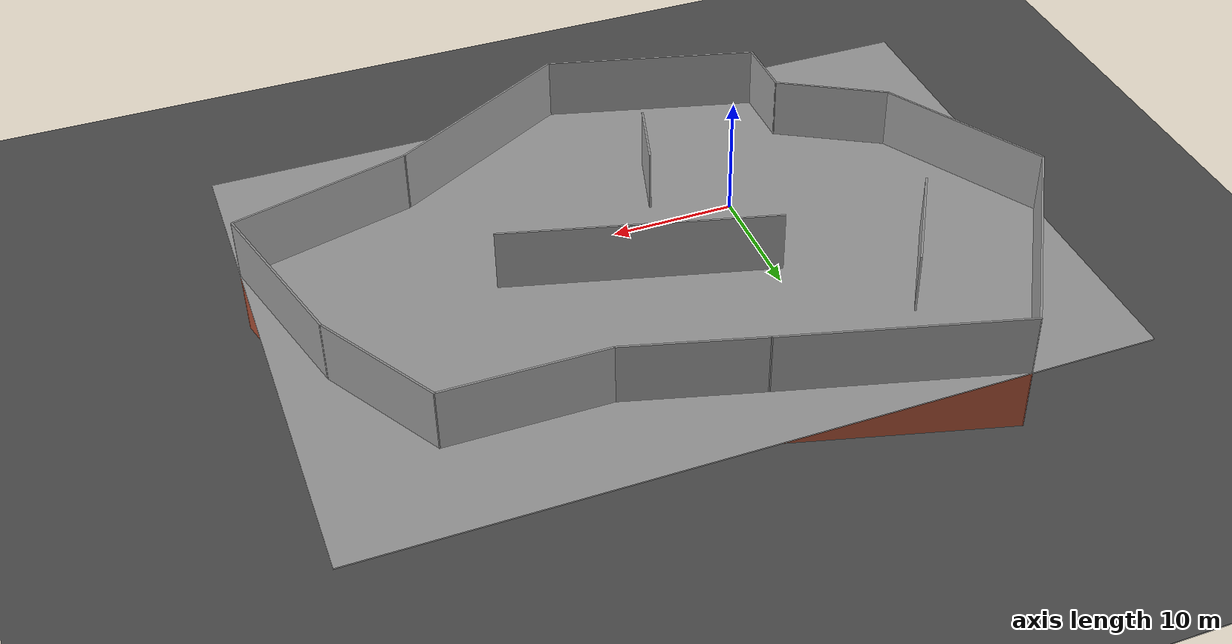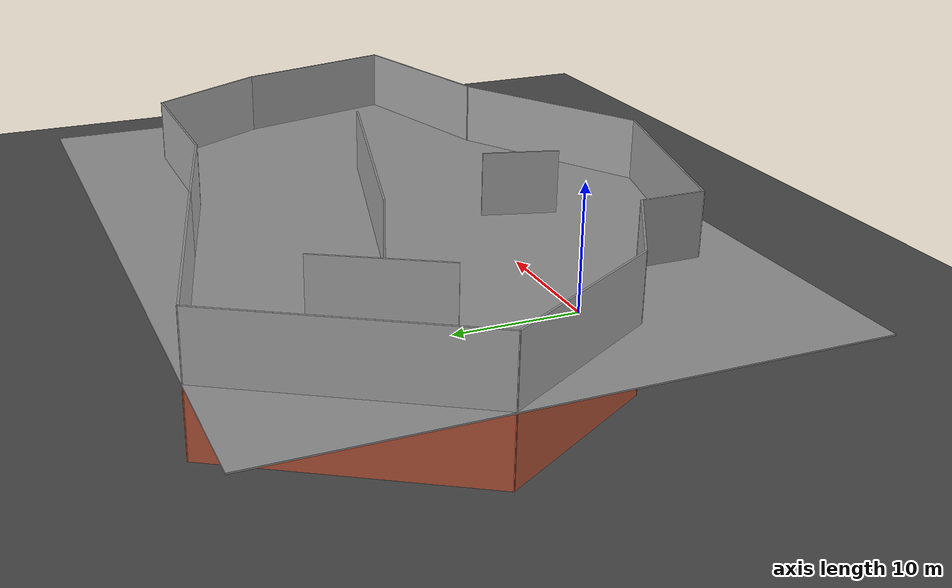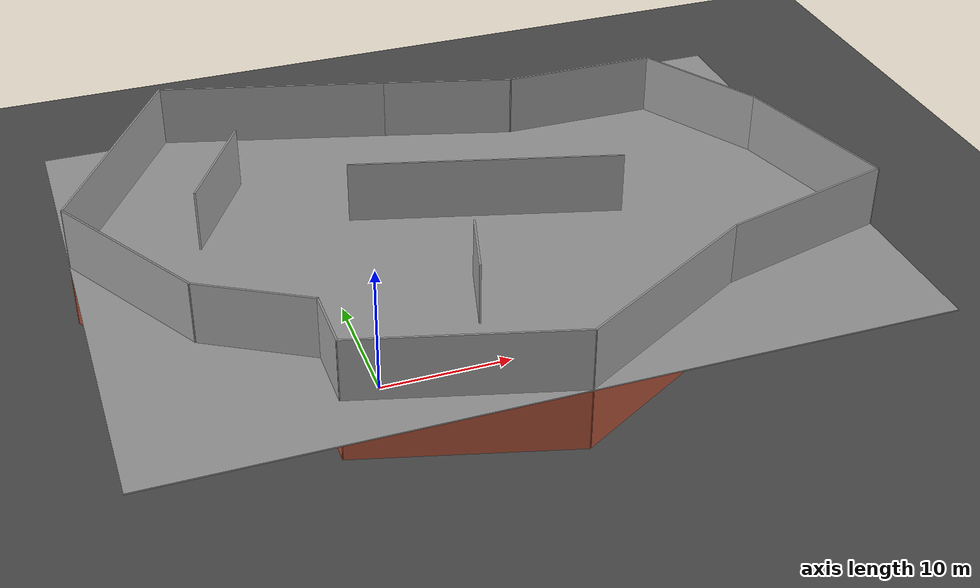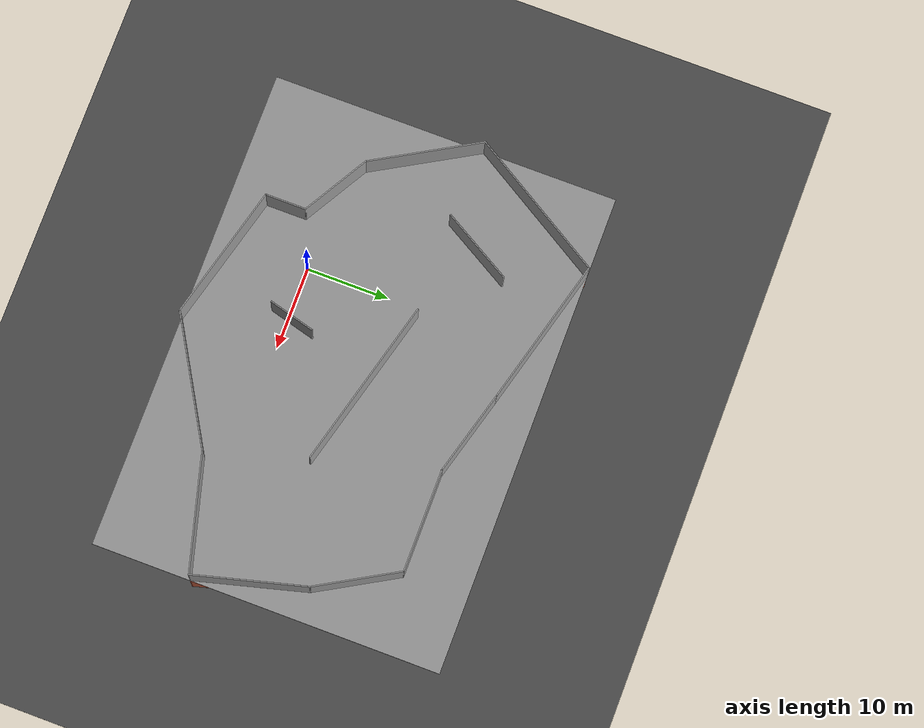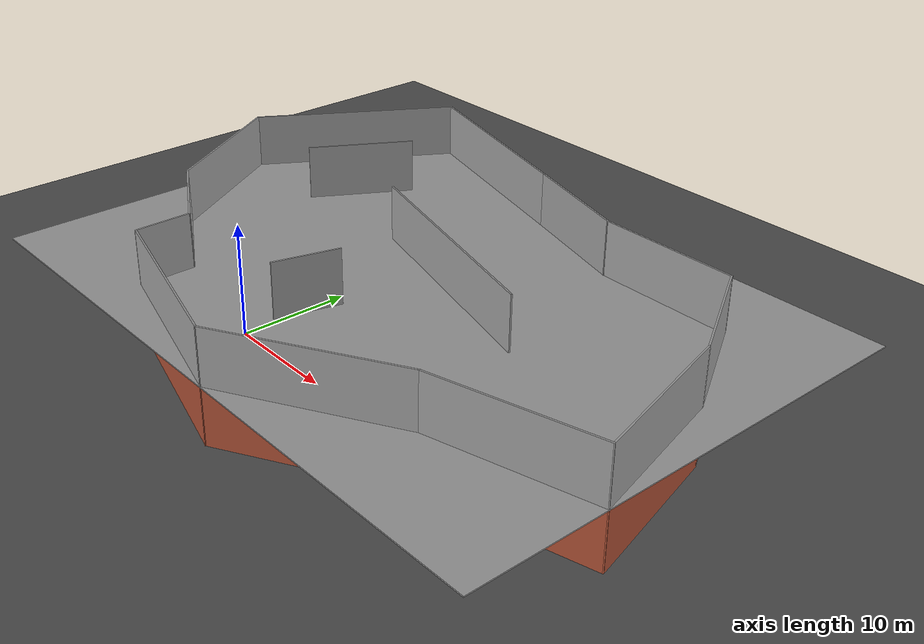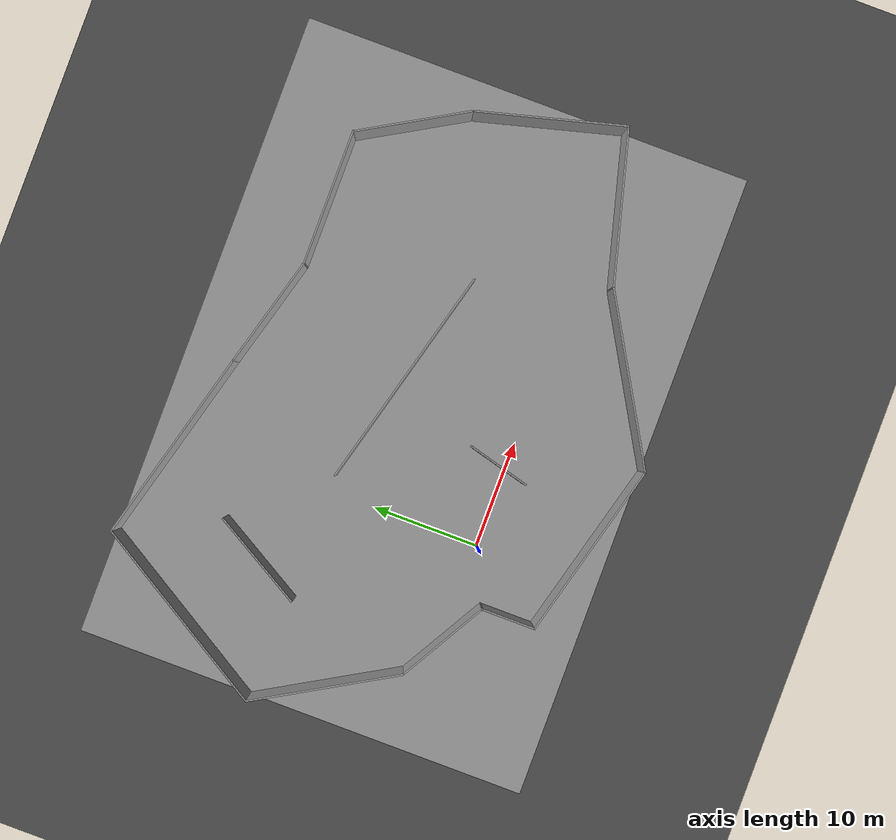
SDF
<sdf version="1.6">
 <world name="default">
  <light name="sun" type="directional">
   <pose>0 0 10 0 -0 0</pose>
   <diffuse>0.8 0.8 0.8 1</diffuse>
   <specular>0.2 0.2 0.2 1</specular>
   <attenuation>
    <range>1000</range>
    <constant>0.9</constant>
    <linear>0.01</linear>
    <quadratic>0.001</quadratic>
   </attenuation>
   <direction>-0.5 0.1 -0.9</direction>
  </light>
  <model name="ground_plane">
   <static>1</static>
   <link name="link">
    <collision name="collision">
     <geometry><plane><normal>0 0 1</normal><size>100 100</size></plane></geometry>
     <surface>
      <contact><collide_bitmask>65535</collide_bitmask></contact>
      <friction><ode><mu>100</mu><mu2>50</mu2></ode></friction>
     </surface>
    </collision>
    <visual name="visual">
     <cast_shadows>0</cast_shadows>
     <geometry><plane><normal>0 0 1</normal><size>100 100</size></plane></geometry>
     <material>
      <script><uri>file://media/materials/scripts/gazebo.material</uri><name>Gazebo/Grey</name></script>
     </material>
    </visual>
   </link>
  </model>
  <model name="asphalt_plane">
   <static>1</static>
   <link name="link">
    <collision name="collision"><geometry><box><size>200 200 0.1</size></box></geometry></collision>
    <visual name="visual">
     <cast_shadows>0</cast_shadows>
     <geometry><box><size>200 200 0.1</size></box></geometry>
     <material>
      <script>
       <uri>model://asphalt_plane/materials/scripts</uri>
       <uri>model://asphalt_plane/materials/textures</uri>
       <name>vrc/asphalt</name>
      </script>
     </material>
    </visual>
   </link>
  </model>
  <physics name="default_physics" default="0" type="ode">
   <ode>
    <solver>
     <type>quick</type>
     <iters>10</iters>
     <sor>1.3</sor>
     <use_dynamic_moi_rescaling>0</use_dynamic_moi_rescaling>
    </solver>
    <constraints>
     <cfm>0</cfm>
     <erp>0.2</erp>
     <contact_max_correcting_vel>100</contact_max_correcting_vel>
     <contact_surface_layer>0.001</contact_surface_layer>
    </constraints>
   </ode>
   <max_step_size>0.004</max_step_size>
   <real_time_factor>1</real_time_factor>
   <real_time_update_rate>250</real_time_update_rate>
  </physics>
  <gravity>0 0 -9.8066</gravity>
  <magnetic_field>6e-06 2.3e-05 -4.2e-05</magnetic_field>
  <atmosphere type="adiabatic"/>
  <scene><ambient>0.4 0.4 0.4 1</ambient><background>0.7 0.7 0.7 1</background><shadows>1</shadows></scene>
  <spherical_coordinates>
   <surface_model>EARTH_WGS84</surface_model>
   <latitude_deg>0</latitude_deg>
   <longitude_deg>0</longitude_deg>
   <elevation>0</elevation>
   <heading_deg>0</heading_deg>
  </spherical_coordinates>
  <model name="indoor1">
   <pose>10.1354 9.92724 0 0 -0 0</pose>
   <link name="Floor_0">
    <collision name="Floor_0_Collision">
     <geometry><box><size>58.5728 41.9035 0.1</size></box></geometry>
     <pose>0 0 0.05 0 -0 0</pose>
    </collision>
    <visual name="Floor_0_Visual">
     <pose>0 0 0.05 0 -0 0</pose>
     <geometry><box><size>58.5728 41.9035 0.1</size></box></geometry>
     <material>
      <script><uri>file://media/materials/scripts/gazebo.material</uri><name>Gazebo/Grey</name></script>
      <ambient>1 1 1 1</ambient>
     </material>
     <meta><layer>1</layer></meta>
    </visual>
    <pose>-1e-06 1e-06 5 0 -0 0</pose>
   </link>
   <link name="Wall_0">
    <collision name="Wall_0_Collision">
     <geometry><box><size>5 0.15 5</size></box></geometry>
     <pose>0 0 2.5 0 -0 0</pose>
    </collision>
    <visual name="Wall_0_Visual">
     <pose>0 0 2.5 0 -0 0</pose>
     <geometry><box><size>5 0.15 5</size></box></geometry>
     <material>
      <script><uri>file://media/materials/scripts/gazebo.material</uri><name>Gazebo/Bricks</name></script>
      <ambient>1 1 1 1</ambient>
     </material>
     <meta><layer>0</layer></meta>
    </visual>
    <pose>-14.5724 -14.1282 0 0 -0 -1.5708</pose>
   </link>
   <link name="Wall_1">
    <collision name="Wall_1_Collision">
     <geometry><box><size>16.75 0.15 5</size></box></geometry>
     <pose>0 0 2.5 0 -0 0</pose>
    </collision>
    <visual name="Wall_1_Visual">
     <pose>0 0 2.5 0 -0 0</pose>
     <geometry><box><size>16.75 0.15 5</size></box></geometry>
     <material>
      <script><uri>file://media/materials/scripts/gazebo.material</uri><name>Gazebo/Bricks</name></script>
      <ambient>1 1 1 1</ambient>
     </material>
     <meta><layer>0</layer></meta>
    </visual>
    <pose>-6.55494 -18.7012 0 0 -0 -0.261766</pose>
   </link>
   <link name="Wall_10">
    <collision name="Wall_10_Collision">
     <geometry><box><size>14 0.15 5</size></box></geometry>
     <pose>0 0 2.5 0 -0 0</pose>
    </collision>
    <visual name="Wall_10_Visual">
     <pose>0 0 2.5 0 -0 0</pose>
     <geometry><box><size>14 0.15 5</size></box></geometry>
     <material>
      <script><uri>file://media/materials/scripts/gazebo.material</uri><name>Gazebo/Bricks</name></script>
      <ambient>1 1 1 1</ambient>
     </material>
     <meta><layer>0</layer></meta>
    </visual>
    <pose>-25.7209 -1.25624 0 0 -0 -1.04718</pose>
   </link>
   <link name="Wall_11">
    <collision name="Wall_11_Collision">
     <geometry><box><size>9.03144 0.15 5</size></box></geometry>
     <pose>0 0 2.5 0 -0 0</pose>
    </collision>
    <visual name="Wall_11_Visual">
     <pose>0 0 2.5 0 -0 0</pose>
     <geometry><box><size>9.03144 0.15 5</size></box></geometry>
     <material>
      <script><uri>file://media/materials/scripts/gazebo.material</uri><name>Gazebo/Bricks</name></script>
      <ambient>1 1 1 1</ambient>
     </material>
     <meta><layer>0</layer></meta>
    </visual>
    <pose>-18.4154 -9.47824 0 0 -0 -0.524816</pose>
   </link>
   <link name="Wall_13">
    <collision name="Wall_13_Collision">
     <geometry><box><size>21 0.15 5</size></box></geometry>
     <pose>0 0 2.5 0 -0 0</pose>
    </collision>
    <visual name="Wall_13_Visual">
     <pose>0 0 2.5 0 -0 0</pose>
     <geometry><box><size>21 0.15 5</size></box></geometry>
     <material>
      <script><uri>file://media/materials/scripts/gazebo.material</uri><name>Gazebo/Bricks</name></script>
      <ambient>1 1 1 1</ambient>
     </material>
     <meta><layer>0</layer></meta>
    </visual>
    <pose>1.94606 1.63376 0 0 -0 -0.261789</pose>
   </link>
   <link name="Wall_15">
    <collision name="Wall_15_Collision">
     <geometry><box><size>9.5 0.15 5</size></box></geometry>
     <pose>0 0 2.5 0 -0 0</pose>
    </collision>
    <visual name="Wall_15_Visual">
     <pose>0 0 2.5 0 -0 0</pose>
     <geometry><box><size>9.5 0.15 5</size></box></geometry>
     <material>
      <script><uri>file://media/materials/scripts/gazebo.material</uri><name>Gazebo/Bricks</name></script>
      <ambient>1 1 1 1</ambient>
     </material>
     <meta><layer>0</layer></meta>
    </visual>
    <pose>-17.3919 8.07926 0 0 -0 -2.09441</pose>
   </link>
   <link name="Wall_18">
    <collision name="Wall_18_Collision">
     <geometry><box><size>5.75 0.15 5</size></box></geometry>
     <pose>0 0 2.5 0 -0 0</pose>
    </collision>
    <visual name="Wall_18_Visual">
     <pose>0 0 2.5 0 -0 0</pose>
     <geometry><box><size>5.75 0.15 5</size></box></geometry>
     <material>
      <script><uri>file://media/materials/scripts/gazebo.material</uri><name>Gazebo/Bricks</name></script>
      <ambient>1 1 1 1</ambient>
     </material>
     <meta><layer>0</layer></meta>
    </visual>
    <pose>-2.41344 -8.76824 0 0 -0 -1.83266</pose>
   </link>
   <link name="Wall_2">
    <collision name="Wall_2_Collision">
     <geometry><box><size>16.4589 0.15 5</size></box></geometry>
     <pose>0 0 2.5 0 -0 0</pose>
    </collision>
    <visual name="Wall_2_Visual">
     <pose>0 0 2.5 0 -0 0</pose>
     <geometry><box><size>16.4589 0.15 5</size></box></geometry>
     <material>
      <script><uri>file://media/materials/scripts/gazebo.material</uri><name>Gazebo/Bricks</name></script>
      <ambient>1 1 1 1</ambient>
     </material>
     <meta><layer>0</layer></meta>
    </visual>
    <pose>8.51856 -16.7617 0 0 -0 0.525056</pose>
   </link>
   <link name="Wall_20">
    <collision name="Wall_20_Collision">
     <geometry><box><size>5 0.15 5</size></box></geometry>
     <pose>0 0 2.5 0 -0 0</pose>
    </collision>
    <visual name="Wall_20_Visual">
     <pose>0 0 2.5 0 -0 0</pose>
     <geometry><box><size>5 0.15 5</size></box></geometry>
     <material>
      <script><uri>file://media/materials/scripts/gazebo.material</uri><name>Gazebo/Grey</name></script>
      <ambient>1 1 1 1</ambient>
     </material>
     <meta><layer>1</layer></meta>
    </visual>
    <pose>-14.5724 -14.1282 5 0 -0 -1.5708</pose>
   </link>
   <link name="Wall_21">
    <collision name="Wall_21_Collision">
     <geometry><box><size>16.7505 0.15 5</size></box></geometry>
     <pose>0 0 2.5 0 -0 0</pose>
    </collision>
    <visual name="Wall_21_Visual">
     <pose>0 0 2.5 0 -0 0</pose>
     <geometry><box><size>16.7505 0.15 5</size></box></geometry>
     <material>
      <script><uri>file://media/materials/scripts/gazebo.material</uri><name>Gazebo/Grey</name></script>
      <ambient>1 1 1 1</ambient>
     </material>
     <meta><layer>1</layer></meta>
    </visual>
    <pose>-6.55494 -18.7012 5 0 -0 -0.261766</pose>
   </link>
   <link name="Wall_22">
    <collision name="Wall_22_Collision">
     <geometry><box><size>16.4589 0.15 5</size></box></geometry>
     <pose>0 0 2.5 0 -0 0</pose>
    </collision>
    <visual name="Wall_22_Visual">
     <pose>0 0 2.5 0 -0 0</pose>
     <geometry><box><size>16.4589 0.15 5</size></box></geometry>
     <material>
      <script><uri>file://media/materials/scripts/gazebo.material</uri><name>Gazebo/Grey</name></script>
      <ambient>1 1 1 1</ambient>
     </material>
     <meta><layer>1</layer></meta>
    </visual>
    <pose>8.51856 -16.7617 5 0 -0 0.525056</pose>
   </link>
   <link name="Wall_23">
    <collision name="Wall_23_Collision">
     <geometry><box><size>14.2503 0.15 5</size></box></geometry>
     <pose>0 0 2.5 0 -0 0</pose>
    </collision>
    <visual name="Wall_23_Visual">
     <pose>0 0 2.5 0 -0 0</pose>
     <geometry><box><size>14.2503 0.15 5</size></box></geometry>
     <material>
      <script><uri>file://media/materials/scripts/gazebo.material</uri><name>Gazebo/Grey</name></script>
      <ambient>1 1 1 1</ambient>
     </material>
     <meta><layer>1</layer></meta>
    </visual>
    <pose>22.3846 -10.8497 5 0 -0 0.261767</pose>
   </link>
   <link name="Wall_24">
    <collision name="Wall_24_Collision">
     <geometry><box><size>13.7383 0.15 5</size></box></geometry>
     <pose>0 0 2.5 0 -0 0</pose>
    </collision>
    <visual name="Wall_24_Visual">
     <pose>0 0 2.5 0 -0 0</pose>
     <geometry><box><size>13.7383 0.15 5</size></box></geometry>
     <material>
      <script><uri>file://media/materials/scripts/gazebo.material</uri><name>Gazebo/Grey</name></script>
      <ambient>1 1 1 1</ambient>
     </material>
     <meta><layer>1</layer></meta>
    </visual>
    <pose>27.4581 -2.45674 5 0 -0 1.82925</pose>
   </link>
   <link name="Wall_25">
    <collision name="Wall_25_Collision">
     <geometry><box><size>10.7501 0.15 5</size></box></geometry>
     <pose>0 0 2.5 0 -0 0</pose>
    </collision>
    <visual name="Wall_25_Visual">
     <pose>0 0 2.5 0 -0 0</pose>
     <geometry><box><size>10.7501 0.15 5</size></box></geometry>
     <material>
      <script><uri>file://media/materials/scripts/gazebo.material</uri><name>Gazebo/Grey</name></script>
      <ambient>1 1 1 1</ambient>
     </material>
     <meta><layer>1</layer></meta>
    </visual>
    <pose>23.0716 8.70176 5 0 -0 2.09439</pose>
   </link>
   <link name="Wall_26">
    <collision name="Wall_26_Collision">
     <geometry><box><size>12.392 0.15 5</size></box></geometry>
     <pose>0 0 2.5 0 -0 0</pose>
    </collision>
    <visual name="Wall_26_Visual">
     <pose>0 0 2.5 0 -0 0</pose>
     <geometry><box><size>12.392 0.15 5</size></box></geometry>
     <material>
      <script><uri>file://media/materials/scripts/gazebo.material</uri><name>Gazebo/Grey</name></script>
      <ambient>1 1 1 1</ambient>
     </material>
     <meta><layer>1</layer></meta>
    </visual>
    <pose>14.3006 13.2918 5 0 -0 3.14159</pose>
   </link>
   <link name="Wall_27">
    <collision name="Wall_27_Collision">
     <geometry><box><size>10.5888 0.15 5</size></box></geometry>
     <pose>0 0 2.5 0 -0 0</pose>
    </collision>
    <visual name="Wall_27_Visual">
     <pose>0 0 2.5 0 -0 0</pose>
     <geometry><box><size>10.5888 0.15 5</size></box></geometry>
     <material>
      <script><uri>file://media/materials/scripts/gazebo.material</uri><name>Gazebo/Grey</name></script>
      <ambient>1 1 1 1</ambient>
     </material>
     <meta><layer>1</layer></meta>
    </visual>
    <pose>3.15256 14.6958 5 0 -0 2.86924</pose>
   </link>
   <link name="Wall_28">
    <collision name="Wall_28_Collision">
     <geometry><box><size>18.3621 0.15 5</size></box></geometry>
     <pose>0 0 2.5 0 -0 0</pose>
    </collision>
    <visual name="Wall_28_Visual">
     <pose>0 0 2.5 0 -0 0</pose>
     <geometry><box><size>18.3621 0.15 5</size></box></geometry>
     <material>
      <script><uri>file://media/materials/scripts/gazebo.material</uri><name>Gazebo/Grey</name></script>
      <ambient>1 1 1 1</ambient>
     </material>
     <meta><layer>1</layer></meta>
    </visual>
    <pose>-10.6654 18.4743 5 0 -0 2.87778</pose>
   </link>
   <link name="Wall_29">
    <collision name="Wall_29_Collision">
     <geometry><box><size>18.9671 0.15 5</size></box></geometry>
     <pose>0 0 2.5 0 -0 0</pose>
    </collision>
    <visual name="Wall_29_Visual">
     <pose>0 0 2.5 0 -0 0</pose>
     <geometry><box><size>18.9671 0.15 5</size></box></geometry>
     <material>
      <script><uri>file://media/materials/scripts/gazebo.material</uri><name>Gazebo/Grey</name></script>
      <ambient>1 1 1 1</ambient>
     </material>
     <meta><layer>1</layer></meta>
    </visual>
    <pose>-24.3199 12.7948 5 0 -0 -2.11405</pose>
   </link>
   <link name="Wall_3">
    <collision name="Wall_3_Collision">
     <geometry><box><size>14.2502 0.15 5</size></box></geometry>
     <pose>0 0 2.5 0 -0 0</pose>
    </collision>
    <visual name="Wall_3_Visual">
     <pose>0 0 2.5 0 -0 0</pose>
     <geometry><box><size>14.2502 0.15 5</size></box></geometry>
     <material>
      <script><uri>file://media/materials/scripts/gazebo.material</uri><name>Gazebo/Bricks</name></script>
      <ambient>1 1 1 1</ambient>
     </material>
     <meta><layer>0</layer></meta>
    </visual>
    <pose>22.3846 -10.8497 0 0 -0 0.261767</pose>
   </link>
   <link name="Wall_30">
    <collision name="Wall_30_Collision">
     <geometry><box><size>13.9996 0.15 5</size></box></geometry>
     <pose>0 0 2.5 0 -0 0</pose>
    </collision>
    <visual name="Wall_30_Visual">
     <pose>0 0 2.5 0 -0 0</pose>
     <geometry><box><size>13.9996 0.15 5</size></box></geometry>
     <material>
      <script><uri>file://media/materials/scripts/gazebo.material</uri><name>Gazebo/Grey</name></script>
      <ambient>1 1 1 1</ambient>
     </material>
     <meta><layer>1</layer></meta>
    </visual>
    <pose>-25.7209 -1.25624 5 0 -0 -1.04718</pose>
   </link>
   <link name="Wall_31">
    <collision name="Wall_31_Collision">
     <geometry><box><size>9.03128 0.15 5</size></box></geometry>
     <pose>0 0 2.5 0 -0 0</pose>
    </collision>
    <visual name="Wall_31_Visual">
     <pose>0 0 2.5 0 -0 0</pose>
     <geometry><box><size>9.03128 0.15 5</size></box></geometry>
     <material>
      <script><uri>file://media/materials/scripts/gazebo.material</uri><name>Gazebo/Grey</name></script>
      <ambient>1 1 1 1</ambient>
     </material>
     <meta><layer>1</layer></meta>
    </visual>
    <pose>-18.4154 -9.47824 5 0 -0 -0.524816</pose>
   </link>
   <link name="Wall_32">
    <collision name="Wall_32_Collision">
     <geometry><box><size>20.9994 0.15 5</size></box></geometry>
     <pose>0 0 2.5 0 -0 0</pose>
    </collision>
    <visual name="Wall_32_Visual">
     <pose>0 0 2.5 0 -0 0</pose>
     <geometry><box><size>20.9994 0.15 5</size></box></geometry>
     <material>
      <script><uri>file://media/materials/scripts/gazebo.material</uri><name>Gazebo/Grey</name></script>
      <ambient>1 1 1 1</ambient>
     </material>
     <meta><layer>1</layer></meta>
    </visual>
    <pose>1.94606 1.63376 5 0 -0 -0.261789</pose>
   </link>
   <link name="Wall_33">
    <collision name="Wall_33_Collision">
     <geometry><box><size>9.49971 0.15 5</size></box></geometry>
     <pose>0 0 2.5 0 -0 0</pose>
    </collision>
    <visual name="Wall_33_Visual">
     <pose>0 0 2.5 0 -0 0</pose>
     <geometry><box><size>9.49971 0.15 5</size></box></geometry>
     <material>
      <script><uri>file://media/materials/scripts/gazebo.material</uri><name>Gazebo/Grey</name></script>
      <ambient>1 1 1 1</ambient>
     </material>
     <meta><layer>1</layer></meta>
    </visual>
    <pose>-17.3919 8.07926 5 0 -0 -2.09441</pose>
   </link>
   <link name="Wall_34">
    <collision name="Wall_34_Collision">
     <geometry><box><size>5.75095 0.15 5</size></box></geometry>
     <pose>0 0 2.5 0 -0 0</pose>
    </collision>
    <visual name="Wall_34_Visual">
     <pose>0 0 2.5 0 -0 0</pose>
     <geometry><box><size>5.75095 0.15 5</size></box></geometry>
     <material>
      <script><uri>file://media/materials/scripts/gazebo.material</uri><name>Gazebo/Grey</name></script>
      <ambient>1 1 1 1</ambient>
     </material>
     <meta><layer>1</layer></meta>
    </visual>
    <pose>-2.41344 -8.76824 5 0 -0 -1.83266</pose>
   </link>
   <link name="Wall_4">
    <collision name="Wall_4_Collision">
     <geometry><box><size>13.7384 0.15 5</size></box></geometry>
     <pose>0 0 2.5 0 -0 0</pose>
    </collision>
    <visual name="Wall_4_Visual">
     <pose>0 0 2.5 0 -0 0</pose>
     <geometry><box><size>13.7384 0.15 5</size></box></geometry>
     <material>
      <script><uri>file://media/materials/scripts/gazebo.material</uri><name>Gazebo/Bricks</name></script>
      <ambient>1 1 1 1</ambient>
     </material>
     <meta><layer>0</layer></meta>
    </visual>
    <pose>27.4581 -2.45674 0 0 -0 1.82925</pose>
   </link>
   <link name="Wall_5">
    <collision name="Wall_5_Collision">
     <geometry><box><size>10.75 0.15 5</size></box></geometry>
     <pose>0 0 2.5 0 -0 0</pose>
    </collision>
    <visual name="Wall_5_Visual">
     <pose>0 0 2.5 0 -0 0</pose>
     <geometry><box><size>10.75 0.15 5</size></box></geometry>
     <material>
      <script><uri>file://media/materials/scripts/gazebo.material</uri><name>Gazebo/Bricks</name></script>
      <ambient>1 1 1 1</ambient>
     </material>
     <meta><layer>0</layer></meta>
    </visual>
    <pose>23.0716 8.70176 0 0 -0 2.09439</pose>
   </link>
   <link name="Wall_6">
    <collision name="Wall_6_Collision">
     <geometry><box><size>12.392 0.15 5</size></box></geometry>
     <pose>0 0 2.5 0 -0 0</pose>
    </collision>
    <visual name="Wall_6_Visual">
     <pose>0 0 2.5 0 -0 0</pose>
     <geometry><box><size>12.392 0.15 5</size></box></geometry>
     <material>
      <script><uri>file://media/materials/scripts/gazebo.material</uri><name>Gazebo/Bricks</name></script>
      <ambient>1 1 1 1</ambient>
     </material>
     <meta><layer>0</layer></meta>
    </visual>
    <pose>14.3006 13.2918 0 0 -0 3.14159</pose>
   </link>
   <link name="Wall_7">
    <collision name="Wall_7_Collision">
     <geometry><box><size>10.5888 0.15 5</size></box></geometry>
     <pose>0 0 2.5 0 -0 0</pose>
    </collision>
    <visual name="Wall_7_Visual">
     <pose>0 0 2.5 0 -0 0</pose>
     <geometry><box><size>10.5888 0.15 5</size></box></geometry>
     <material>
      <script><uri>file://media/materials/scripts/gazebo.material</uri><name>Gazebo/Bricks</name></script>
      <ambient>1 1 1 1</ambient>
     </material>
     <meta><layer>0</layer></meta>
    </visual>
    <pose>3.15256 14.6958 0 0 -0 2.86924</pose>
   </link>
   <link name="Wall_8">
    <collision name="Wall_8_Collision">
     <geometry><box><size>18.3624 0.15 5</size></box></geometry>
     <pose>0 0 2.5 0 -0 0</pose>
    </collision>
    <visual name="Wall_8_Visual">
     <pose>0 0 2.5 0 -0 0</pose>
     <geometry><box><size>18.3624 0.15 5</size></box></geometry>
     <material>
      <script><uri>file://media/materials/scripts/gazebo.material</uri><name>Gazebo/Bricks</name></script>
      <ambient>1 1 1 1</ambient>
     </material>
     <meta><layer>0</layer></meta>
    </visual>
    <pose>-10.6654 18.4743 0 0 -0 2.87778</pose>
   </link>
   <link name="Wall_9">
    <collision name="Wall_9_Collision">
     <geometry><box><size>18.9669 0.15 5</size></box></geometry>
     <pose>0 0 2.5 0 -0 0</pose>
    </collision>
    <visual name="Wall_9_Visual">
     <pose>0 0 2.5 0 -0 0</pose>
     <geometry><box><size>18.9669 0.15 5</size></box></geometry>
     <material>
      <script><uri>file://media/materials/scripts/gazebo.material</uri><name>Gazebo/Bricks</name></script>
      <ambient>1 1 1 1</ambient>
     </material>
     <meta><layer>0</layer></meta>
    </visual>
    <pose>-24.3199 12.7948 0 0 -0 -2.11405</pose>
   </link>
   <static>1</static>
  </model>
 </world>
</sdf>
